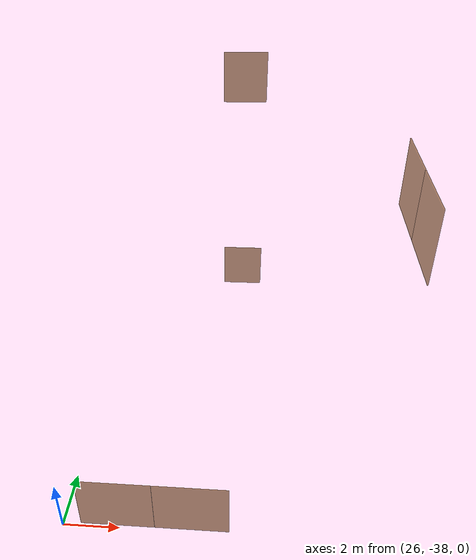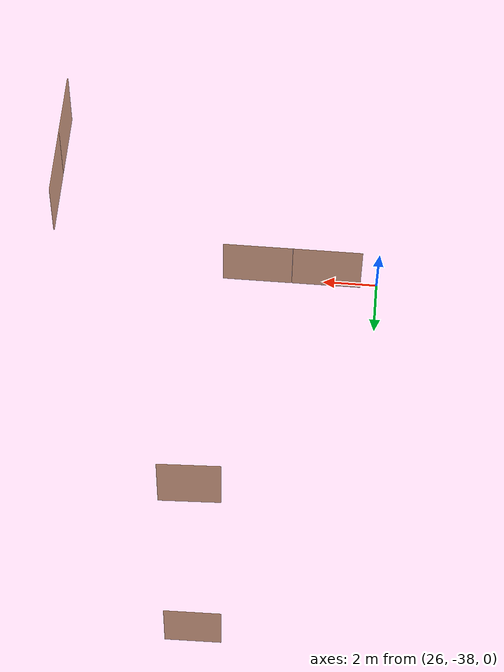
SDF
<sdf version="1.7">
 <world name="sim_world">
  <model name="garaje">
   <pose>29.17348755031176 -37.88522881546682 0.0 0 0 3.141592653589793</pose>
   <link name="right">
    <pose>1.2815642738094226 0 1.11 0 0 0</pose>
    <visual name="right_visual">
     <geometry><box><size>2.5531285476188454 0.03 2.2</size></box></geometry>
     <material>
      <ambient>0.5 0.25 0 0.6</ambient>
      <diffuse>0.5 0.25 0 0.6</diffuse>
      <pbr><metal><metalness>0.0</metalness></metal></pbr>
     </material>
    </visual>
    <collision name="right_collision">
     <geometry><box><size>2.5531285476188454 0.03 2.2</size></box></geometry>
     <surface><contact><collide_bitmask>0x02</collide_bitmask></contact></surface>
    </collision>
    <inertial>
     <mass>50.0</mass>
     <inertia><ixx>20.17041666666667</ixx><iyy>47.326939086109654</iyy><izz>27.164022419442983</izz></inertia>
    </inertial>
   </link>
   <joint name="right_joint" type="revolute">
    <parent>world</parent>
    <child>right</child>
    <axis><xyz>0 0 1</xyz><limit><lower>0</lower><upper>1.57</upper></limit></axis>
    <pose>1.2815642738094226 0 0 0 0 0</pose>
   </joint>
   <link name="left">
    <pose>-1.2815642738094226 0 1.11 0 0 0</pose>
    <visual name="left_visual">
     <geometry><box><size>2.5531285476188454 0.03 2.2</size></box></geometry>
     <material>
      <ambient>0.5 0.25 0 0.6</ambient>
      <diffuse>0.5 0.25 0 0.6</diffuse>
      <pbr><metal><metalness>0.0</metalness></metal></pbr>
     </material>
    </visual>
    <collision name="left_collision">
     <geometry><box><size>2.5531285476188454 0.03 2.2</size></box></geometry>
     <surface><contact><collide_bitmask>0x02</collide_bitmask></contact></surface>
    </collision>
    <inertial>
     <mass>50.0</mass>
     <inertia><ixx>20.17041666666667</ixx><iyy>47.326939086109654</iyy><izz>27.164022419442983</izz></inertia>
    </inertial>
   </link>
   <joint name="left_joint" type="revolute">
    <parent>world</parent>
    <child>left</child>
    <axis><xyz>0 0 1</xyz><limit><lower>-1.57</lower><upper>0</upper></limit></axis>
    <pose>-1.2815642738094226 0 0 0 0 0</pose>
   </joint>
   <plugin name="register_component" filename="libregister_component.so">
    <component name="Door">
     <v_max_door>0.5</v_max_door>
     <a_max_door>0.3</a_max_door>
     <a_nom_door>0.15</a_nom_door>
     <dx_min_door>0.01</dx_min_door>
     <f_max_door>500.0</f_max_door>
     <ros_interface>true</ros_interface>
     <door name="garaje" type="DoubleSwingDoor" left_joint_name="left_joint" right_joint_name="right_joint"/>
    </component>
   </plugin>
  </model>
  <model name="baños">
   <pose>31.52051532984251 -23.078648384705737 0.0 0 0 -3.124139471009618</pose>
   <link name="right">
    <pose>0 0 1.11 0 0 0</pose>
    <visual name="right_visual">
     <geometry><box><size>1.915456096644865 0.03 2.2</size></box></geometry>
     <material>
      <ambient>0.5 0.25 0 0.6</ambient>
      <diffuse>0.5 0.25 0 0.6</diffuse>
      <pbr><metal><metalness>0.0</metalness></metal></pbr>
     </material>
    </visual>
    <collision name="right_collision">
     <geometry><box><size>1.915456096644865 0.03 2.2</size></box></geometry>
     <surface><contact><collide_bitmask>0x02</collide_bitmask></contact></surface>
    </collision>
    <inertial>
     <mass>50.0</mass>
     <inertia><ixx>20.17041666666667</ixx><iyy>35.454050242391595</iyy><izz>15.29113357572493</izz></inertia>
    </inertial>
   </link>
   <joint name="right_joint" type="revolute">
    <parent>world</parent>
    <child>right</child>
    <axis><xyz>0 0 1</xyz><limit><lower>0</lower><upper>1.57</upper></limit></axis>
    <pose>0.9627280483224325 0 0 0 0 0</pose>
   </joint>
   <plugin name="register_component" filename="libregister_component.so">
    <component name="Door">
     <v_max_door>0.5</v_max_door>
     <a_max_door>0.3</a_max_door>
     <a_nom_door>0.15</a_nom_door>
     <dx_min_door>0.01</dx_min_door>
     <f_max_door>500.0</f_max_door>
     <ros_interface>true</ros_interface>
     <door name="baños" type="SwingDoor" left_joint_name="empty_joint" right_joint_name="right_joint"/>
    </component>
   </plugin>
  </model>
  <model name="door29922">
   <pose>31.49732982719954 -23.114956673387873 10.0 0 0 -3.1017277562611008</pose>
   <link name="right">
    <pose>0 0 1.11 0 0 0</pose>
    <visual name="right_visual">
     <geometry><box><size>1.9156695532020782 0.03 2.2</size></box></geometry>
     <material>
      <ambient>0.5 0.25 0 0.6</ambient>
      <diffuse>0.5 0.25 0 0.6</diffuse>
      <pbr><metal><metalness>0.0</metalness></metal></pbr>
     </material>
    </visual>
    <collision name="right_collision">
     <geometry><box><size>1.9156695532020782 0.03 2.2</size></box></geometry>
     <surface><contact><collide_bitmask>0x02</collide_bitmask></contact></surface>
    </collision>
    <inertial>
     <mass>50.0</mass>
     <inertia><ixx>20.17041666666667</ixx><iyy>35.45745765443938</iyy><izz>15.29454098777271</izz></inertia>
    </inertial>
   </link>
   <joint name="right_joint" type="revolute">
    <parent>world</parent>
    <child>right</child>
    <axis><xyz>0 0 -1</xyz><limit><lower>0</lower><upper>1.57</upper></limit></axis>
    <pose>0.9628347766010391 0 0 0 0 0</pose>
   </joint>
   <plugin name="register_component" filename="libregister_component.so">
    <component name="Door">
     <v_max_door>0.5</v_max_door>
     <a_max_door>0.3</a_max_door>
     <a_nom_door>0.15</a_nom_door>
     <dx_min_door>0.01</dx_min_door>
     <f_max_door>500.0</f_max_door>
     <ros_interface>true</ros_interface>
     <door name="door29922" type="SwingDoor" left_joint_name="empty_joint" right_joint_name="right_joint"/>
    </component>
   </plugin>
  </model>
  <model name="door_despacho">
   <pose>36.76564734422264 -34.89022961208454 10.0 0 0 1.5624425638586363</pose>
   <link name="right">
    <pose>1.1236718714765737 0 1.11 0 0 0</pose>
    <visual name="right_visual">
     <geometry><box><size>2.2373437429531475 0.03 2.2</size></box></geometry>
     <material>
      <ambient>0.5 0.25 0 0.6</ambient>
      <diffuse>0.5 0.25 0 0.6</diffuse>
      <pbr><metal><metalness>0.0</metalness></metal></pbr>
     </material>
    </visual>
    <collision name="right_collision">
     <geometry><box><size>2.2373437429531475 0.03 2.2</size></box></geometry>
     <surface><contact><collide_bitmask>0x02</collide_bitmask></contact></surface>
    </collision>
    <inertial>
     <mass>50.0</mass>
     <inertia><ixx>20.17041666666667</ixx><iyy>41.023779267215005</iyy><izz>20.860862600548334</izz></inertia>
    </inertial>
   </link>
   <joint name="right_joint" type="revolute">
    <parent>world</parent>
    <child>right</child>
    <axis><xyz>0 0 1</xyz><limit><lower>0</lower><upper>1.57</upper></limit></axis>
    <pose>1.1236718714765737 0 0 0 0 0</pose>
   </joint>
   <link name="left">
    <pose>-1.1236718714765737 0 1.11 0 0 0</pose>
    <visual name="left_visual">
     <geometry><box><size>2.2373437429531475 0.03 2.2</size></box></geometry>
     <material>
      <ambient>0.5 0.25 0 0.6</ambient>
      <diffuse>0.5 0.25 0 0.6</diffuse>
      <pbr><metal><metalness>0.0</metalness></metal></pbr>
     </material>
    </visual>
    <collision name="left_collision">
     <geometry><box><size>2.2373437429531475 0.03 2.2</size></box></geometry>
     <surface><contact><collide_bitmask>0x02</collide_bitmask></contact></surface>
    </collision>
    <inertial>
     <mass>50.0</mass>
     <inertia><ixx>20.17041666666667</ixx><iyy>41.023779267215005</iyy><izz>20.860862600548334</izz></inertia>
    </inertial>
   </link>
   <joint name="left_joint" type="revolute">
    <parent>world</parent>
    <child>left</child>
    <axis><xyz>0 0 1</xyz><limit><lower>-1.57</lower><upper>0</upper></limit></axis>
    <pose>-1.1236718714765737 0 0 0 0 0</pose>
   </joint>
   <plugin name="register_component" filename="libregister_component.so">
    <component name="Door">
     <v_max_door>0.5</v_max_door>
     <a_max_door>0.3</a_max_door>
     <a_nom_door>0.15</a_nom_door>
     <dx_min_door>0.01</dx_min_door>
     <f_max_door>500.0</f_max_door>
     <ros_interface>true</ros_interface>
     <door name="door_despacho" type="DoubleSwingDoor" left_joint_name="left_joint" right_joint_name="right_joint"/>
    </component>
   </plugin>
  </model>
 </world>
</sdf>
